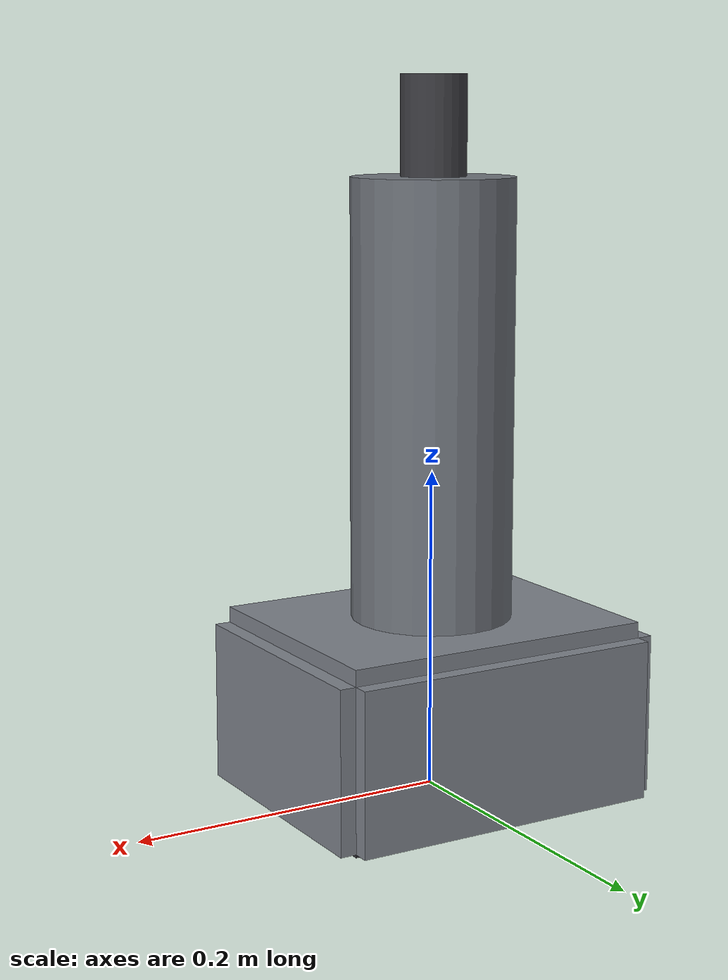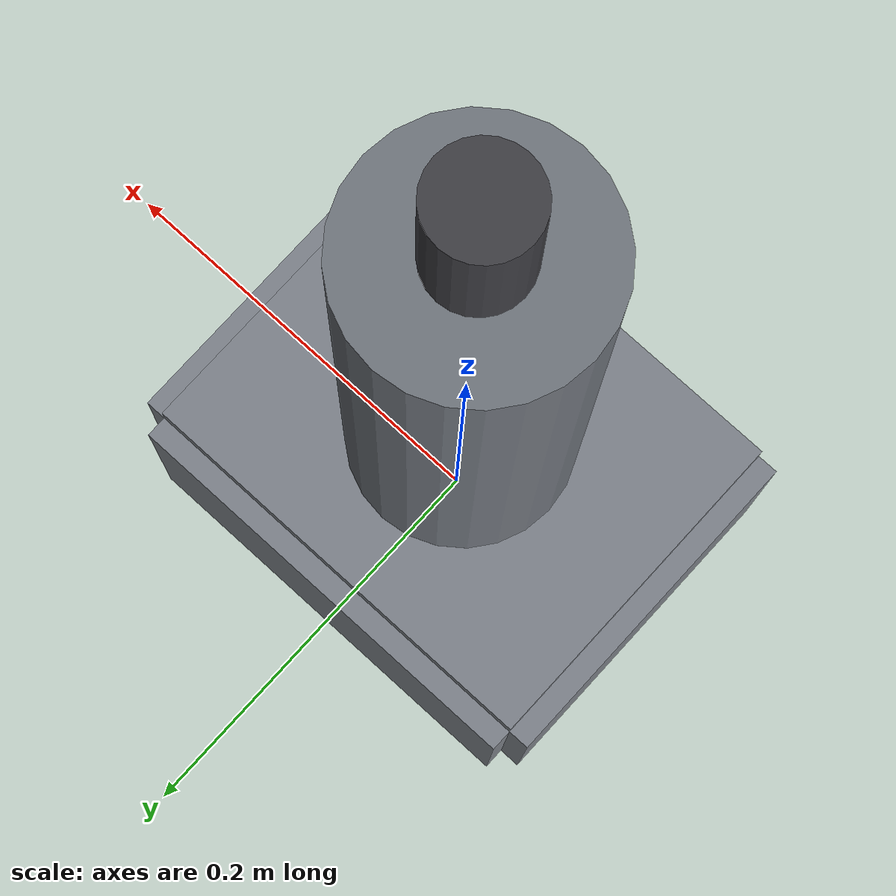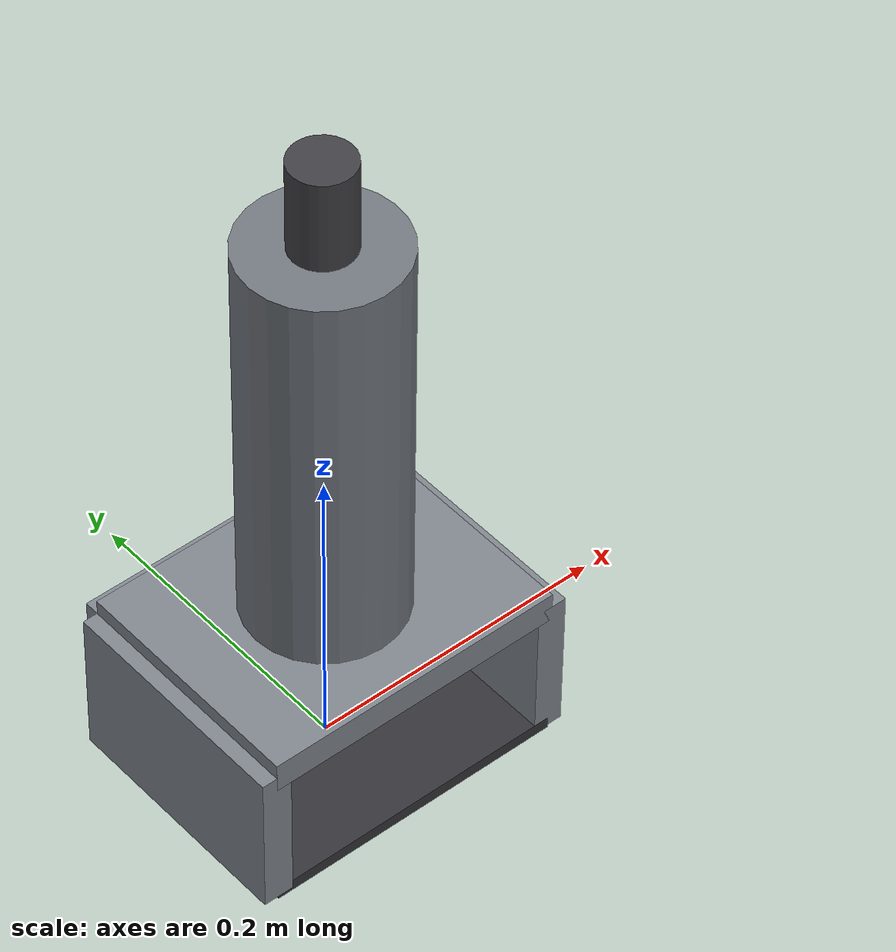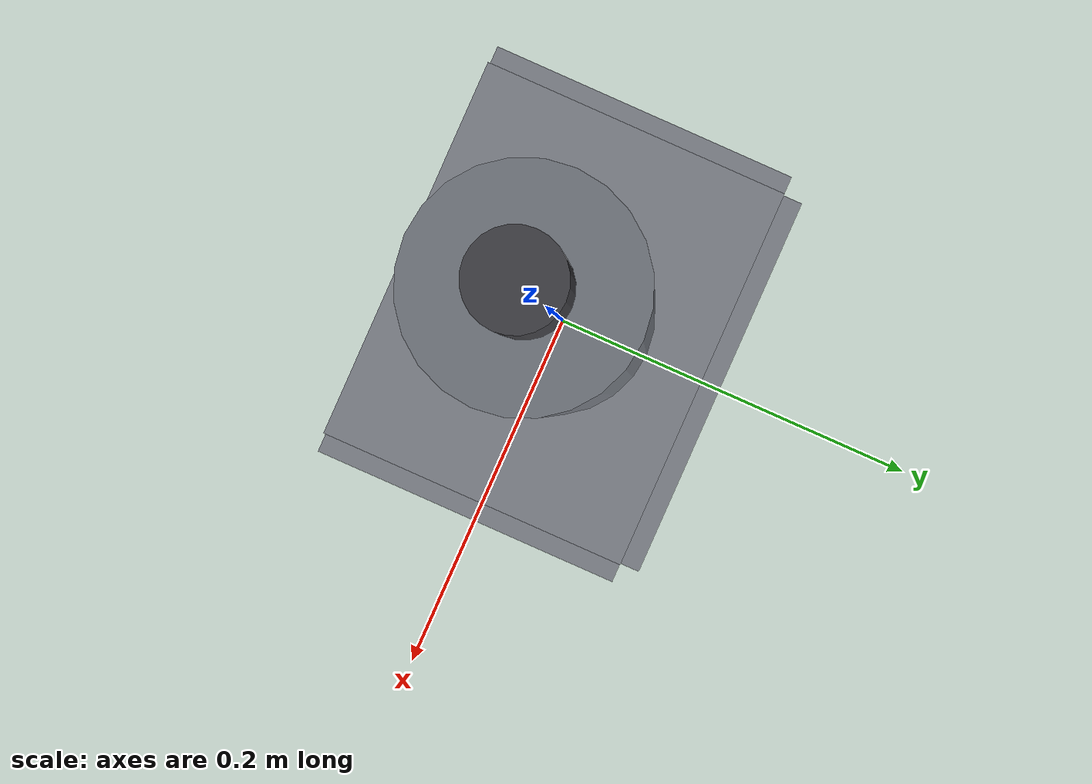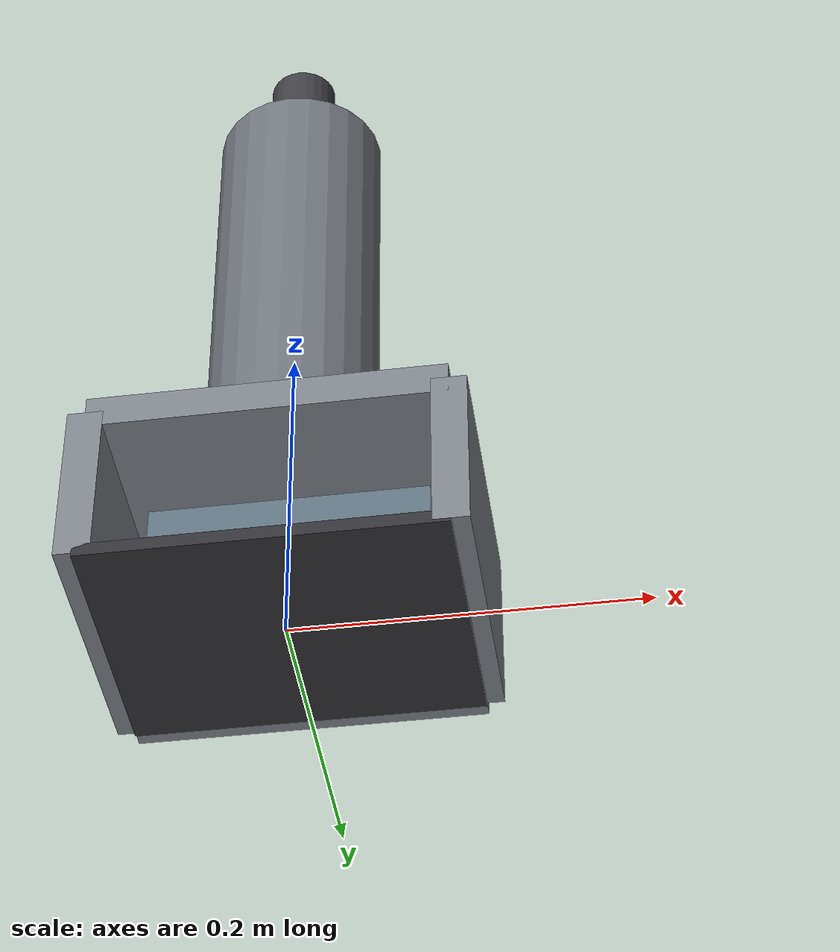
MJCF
<?xml version="1.0" encoding="utf-8"?>
<mujoco model="real_lab_curtin_university_sem">
  <compiler angle="radian" autolimits="true"/>
  <default>
    <default class="body"><geom contype="1" conaffinity="1"/></default>
  </default>
  <worldbody>
    <body name="base">
      <geom type="box" size="0.1 0.01 0.05" pos="0 0.08 0.05" rgba="0.5 0.52 0.55 1" class="body"/>
      <geom type="box" size="0.01 0.08 0.05" pos="-0.1 0 0.05" rgba="0.5 0.52 0.55 1" class="body"/>
      <geom type="box" size="0.01 0.08 0.05" pos="0.1 0 0.05" rgba="0.5 0.52 0.55 1" class="body"/>
      <geom type="box" size="0.1 0.08 0.01" pos="0 0 0.1" rgba="0.5 0.52 0.55 1" class="body"/>
      <geom type="box" size="0.1 0.08 0.004" pos="0 0 0.002" rgba="0.2 0.2 0.22 1" class="body"/>
      <geom type="cylinder" size="0.05 0.14" pos="0.0 0.0 0.24" rgba="0.45 0.47 0.5 1" class="body"/>
      <geom type="cylinder" size="0.02 0.03" pos="0.0 0.0 0.41" rgba="0.25 0.25 0.27 1" class="body"/>
      <body name="door" pos="-0.08 0.0 0.05">
        <joint name="door_joint" type="hinge" axis="0 0 1" range="0 1.8" damping="0.6" frictionloss="0.3"/>
  <geom type="box" size="0.08 0.005 0.05" pos="0.08 0 0" rgba="0.6 0.8 0.9 0.35" class="body"/>
      </body>
    </body>
  </worldbody>
</mujoco>
